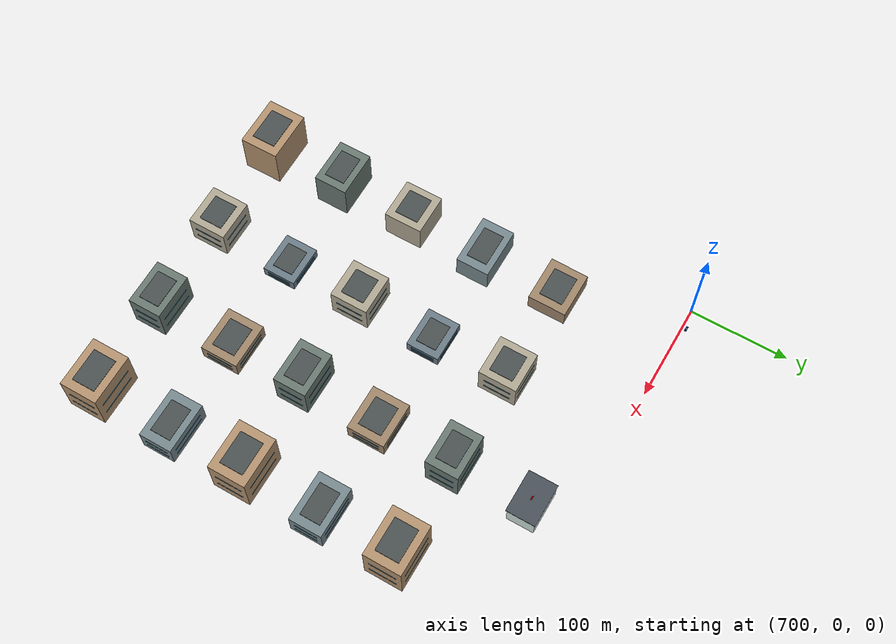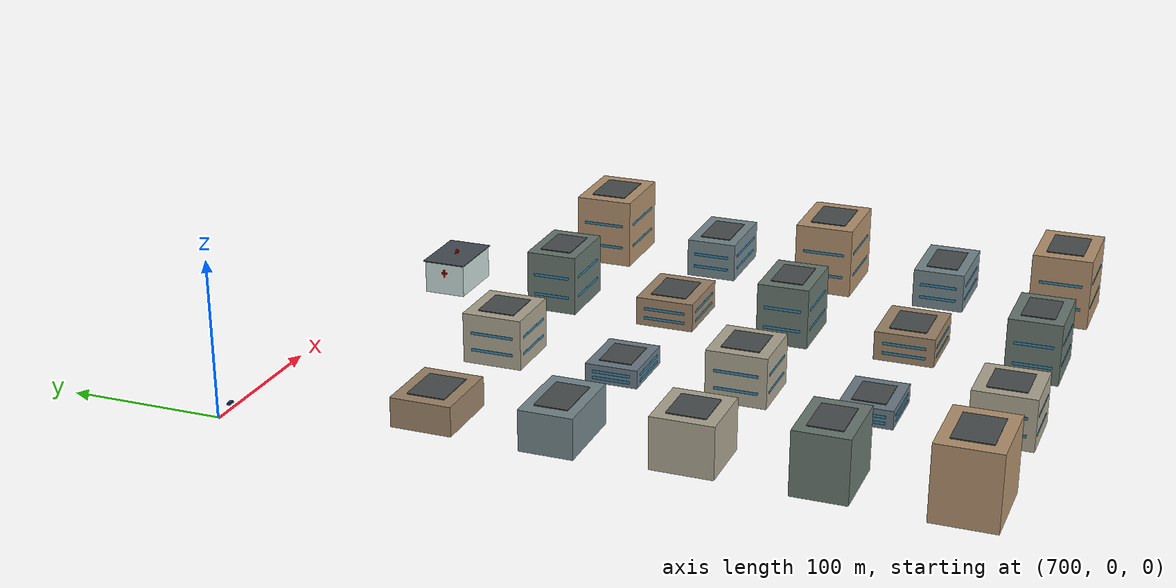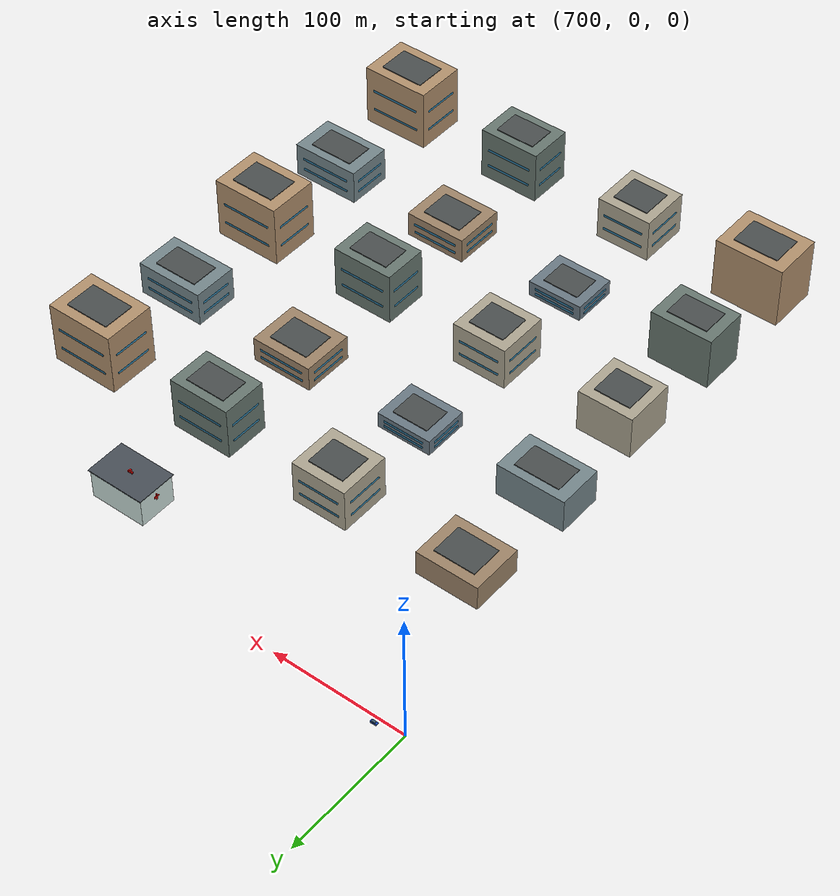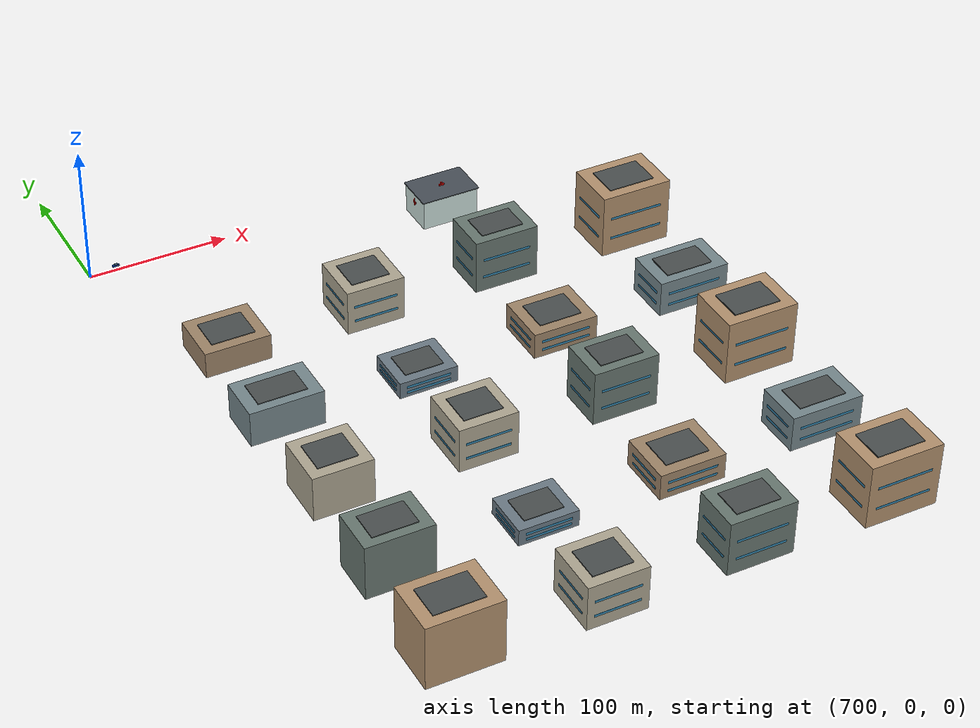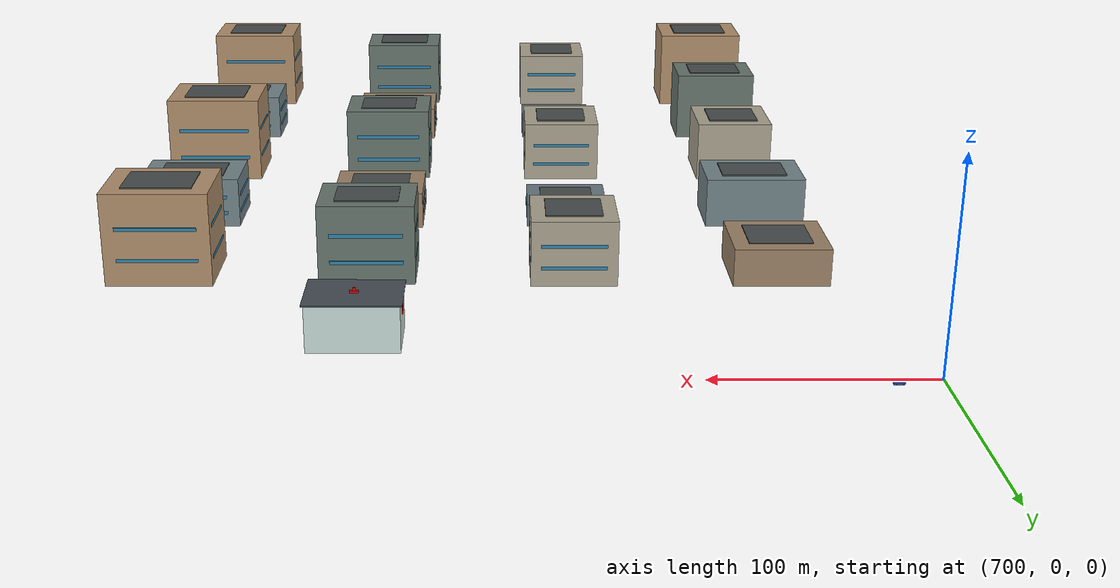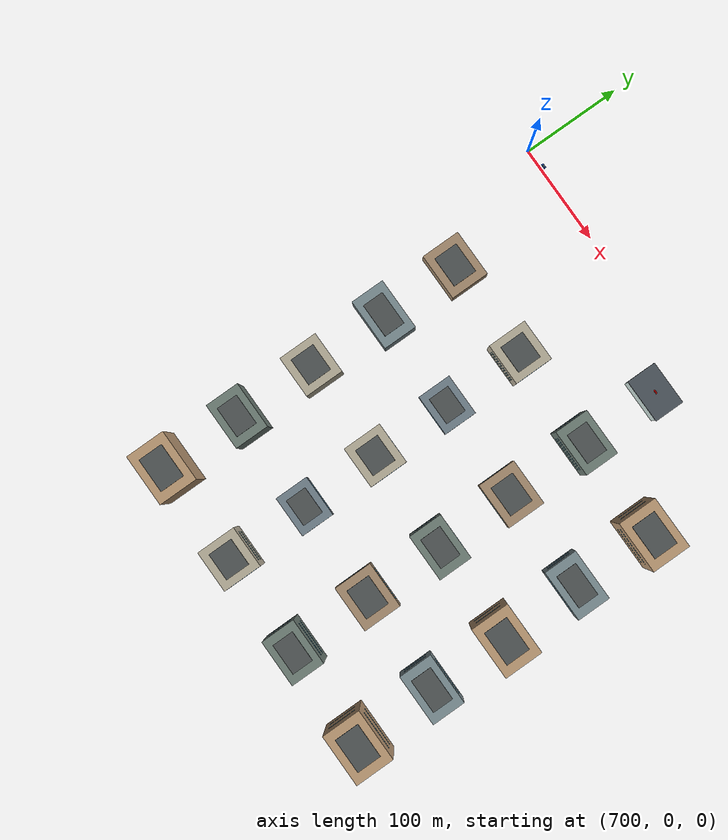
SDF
<sdf version="1.9">
 <world name="smart_city">
  <model name="chennai_block_011">
   <static>true</static>
   <pose>750 -440 0 0 0 0</pose>
   <link name="building">
    <collision name="structure">
     <pose>0 0 23.5 0 0 0</pose>
     <geometry><box><size>52 39 47</size></box></geometry>
    </collision>
    <visual name="facade">
     <pose>0 0 23.5 0 0 0</pose>
     <geometry><box><size>52 39 47</size></box></geometry>
     <material><ambient>0.70 0.57 0.43 1</ambient><diffuse>0.70 0.57 0.43 1</diffuse></material>
    </visual>
    <visual name="roof">
     <pose>0 0 47.3 0 0 0</pose>
     <geometry><box><size>34.3 24.2 0.6</size></box></geometry>
     <material><ambient>0.29 0.31 0.31 1</ambient><diffuse>0.29 0.31 0.31 1</diffuse></material>
    </visual>
   </link>
  </model>
  <model name="chennai_block_022">
   <static>true</static>
   <pose>750 -360 0 0 0 0</pose>
   <link name="building">
    <collision name="structure">
     <pose>0 0 20.0 0 0 0</pose>
     <geometry><box><size>47 34 40</size></box></geometry>
    </collision>
    <visual name="facade">
     <pose>0 0 20.0 0 0 0</pose>
     <geometry><box><size>47 34 40</size></box></geometry>
     <material><ambient>0.41 0.47 0.44 1</ambient><diffuse>0.41 0.47 0.44 1</diffuse></material>
    </visual>
    <visual name="roof">
     <pose>0 0 40.3 0 0 0</pose>
     <geometry><box><size>31.0 21.1 0.6</size></box></geometry>
     <material><ambient>0.29 0.31 0.31 1</ambient><diffuse>0.29 0.31 0.31 1</diffuse></material>
    </visual>
   </link>
  </model>
  <model name="chennai_block_033">
   <static>true</static>
   <pose>750 -280 0 0 0 0</pose>
   <link name="building">
    <collision name="structure">
     <pose>0 0 16.5 0 0 0</pose>
     <geometry><box><size>42 39 33</size></box></geometry>
    </collision>
    <visual name="facade">
     <pose>0 0 16.5 0 0 0</pose>
     <geometry><box><size>42 39 33</size></box></geometry>
     <material><ambient>0.68 0.65 0.57 1</ambient><diffuse>0.68 0.65 0.57 1</diffuse></material>
    </visual>
    <visual name="roof">
     <pose>0 0 33.3 0 0 0</pose>
     <geometry><box><size>27.7 24.2 0.6</size></box></geometry>
     <material><ambient>0.29 0.31 0.31 1</ambient><diffuse>0.29 0.31 0.31 1</diffuse></material>
    </visual>
   </link>
  </model>
  <model name="chennai_block_044">
   <static>true</static>
   <pose>750 -200 0 0 0 0</pose>
   <link name="building">
    <collision name="structure">
     <pose>0 0 13.0 0 0 0</pose>
     <geometry><box><size>52 34 26</size></box></geometry>
    </collision>
    <visual name="facade">
     <pose>0 0 13.0 0 0 0</pose>
     <geometry><box><size>52 34 26</size></box></geometry>
     <material><ambient>0.46 0.53 0.55 1</ambient><diffuse>0.46 0.53 0.55 1</diffuse></material>
    </visual>
    <visual name="roof">
     <pose>0 0 26.3 0 0 0</pose>
     <geometry><box><size>34.3 21.1 0.6</size></box></geometry>
     <material><ambient>0.29 0.31 0.31 1</ambient><diffuse>0.29 0.31 0.31 1</diffuse></material>
    </visual>
   </link>
  </model>
  <model name="chennai_block_055">
   <static>true</static>
   <pose>750 -120 0 0 0 0</pose>
   <link name="building">
    <collision name="structure">
     <pose>0 0 9.5 0 0 0</pose>
     <geometry><box><size>47 39 19</size></box></geometry>
    </collision>
    <visual name="facade">
     <pose>0 0 9.5 0 0 0</pose>
     <geometry><box><size>47 39 19</size></box></geometry>
     <material><ambient>0.62 0.52 0.41 1</ambient><diffuse>0.62 0.52 0.41 1</diffuse></material>
    </visual>
    <visual name="roof">
     <pose>0 0 19.3 0 0 0</pose>
     <geometry><box><size>31.0 24.2 0.6</size></box></geometry>
     <material><ambient>0.29 0.31 0.31 1</ambient><diffuse>0.29 0.31 0.31 1</diffuse></material>
    </visual>
   </link>
  </model>
  <model name="chennai_block_111">
   <static>true</static>
   <pose>850 -440 0 0 0 0</pose>
   <link name="building">
    <collision name="structure">
     <pose>0 0 16.5 0 0 0</pose>
     <geometry><box><size>42 39 33</size></box></geometry>
    </collision>
    <visual name="facade">
     <pose>0 0 16.5 0 0 0</pose>
     <geometry><box><size>42 39 33</size></box></geometry>
     <material><ambient>0.68 0.65 0.57 1</ambient><diffuse>0.68 0.65 0.57 1</diffuse></material>
    </visual>
    <visual name="window_band_y_9_-1">
     <pose>0 -19.54 9.24 0 0 0</pose>
     <geometry><box><size>31.9 0.06 1.8</size></box></geometry>
     <material><ambient>0.20 0.52 0.68 1</ambient><diffuse>0.20 0.52 0.68 1</diffuse></material>
    </visual>
    <visual name="window_band_x_9_-1">
     <pose>-21.04 0 9.24 0 0 0</pose>
     <geometry><box><size>0.06 28.1 1.8</size></box></geometry>
     <material><ambient>0.20 0.52 0.68 1</ambient><diffuse>0.20 0.52 0.68 1</diffuse></material>
    </visual>
    <visual name="window_band_y_9_1">
     <pose>0 19.54 9.24 0 0 0</pose>
     <geometry><box><size>31.9 0.06 1.8</size></box></geometry>
     <material><ambient>0.20 0.52 0.68 1</ambient><diffuse>0.20 0.52 0.68 1</diffuse></material>
    </visual>
    <visual name="window_band_x_9_1">
     <pose>21.04 0 9.24 0 0 0</pose>
     <geometry><box><size>0.06 28.1 1.8</size></box></geometry>
     <material><ambient>0.20 0.52 0.68 1</ambient><diffuse>0.20 0.52 0.68 1</diffuse></material>
    </visual>
    <visual name="window_band_y_20_-1">
     <pose>0 -19.54 20.46 0 0 0</pose>
     <geometry><box><size>31.9 0.06 1.8</size></box></geometry>
     <material><ambient>0.20 0.52 0.68 1</ambient><diffuse>0.20 0.52 0.68 1</diffuse></material>
    </visual>
    <visual name="window_band_x_20_-1">
     <pose>-21.04 0 20.46 0 0 0</pose>
     <geometry><box><size>0.06 28.1 1.8</size></box></geometry>
     <material><ambient>0.20 0.52 0.68 1</ambient><diffuse>0.20 0.52 0.68 1</diffuse></material>
    </visual>
    <visual name="window_band_y_20_1">
     <pose>0 19.54 20.46 0 0 0</pose>
     <geometry><box><size>31.9 0.06 1.8</size></box></geometry>
     <material><ambient>0.20 0.52 0.68 1</ambient><diffuse>0.20 0.52 0.68 1</diffuse></material>
    </visual>
    <visual name="window_band_x_20_1">
     <pose>21.04 0 20.46 0 0 0</pose>
     <geometry><box><size>0.06 28.1 1.8</size></box></geometry>
     <material><ambient>0.20 0.52 0.68 1</ambient><diffuse>0.20 0.52 0.68 1</diffuse></material>
    </visual>
    <visual name="roof">
     <pose>0 0 33.3 0 0 0</pose>
     <geometry><box><size>27.7 24.2 0.6</size></box></geometry>
     <material><ambient>0.29 0.31 0.31 1</ambient><diffuse>0.29 0.31 0.31 1</diffuse></material>
    </visual>
   </link>
  </model>
  <model name="chennai_block_112">
   <static>true</static>
   <pose>950 -440 0 0 0 0</pose>
   <link name="building">
    <collision name="structure">
     <pose>0 0 20.0 0 0 0</pose>
     <geometry><box><size>47 34 40</size></box></geometry>
    </collision>
    <visual name="facade">
     <pose>0 0 20.0 0 0 0</pose>
     <geometry><box><size>47 34 40</size></box></geometry>
     <material><ambient>0.41 0.47 0.44 1</ambient><diffuse>0.41 0.47 0.44 1</diffuse></material>
    </visual>
    <visual name="window_band_y_11_-1">
     <pose>0 -17.04 11.20 0 0 0</pose>
     <geometry><box><size>35.7 0.06 1.8</size></box></geometry>
     <material><ambient>0.20 0.52 0.68 1</ambient><diffuse>0.20 0.52 0.68 1</diffuse></material>
    </visual>
    <visual name="window_band_x_11_-1">
     <pose>-23.54 0 11.20 0 0 0</pose>
     <geometry><box><size>0.06 24.5 1.8</size></box></geometry>
     <material><ambient>0.20 0.52 0.68 1</ambient><diffuse>0.20 0.52 0.68 1</diffuse></material>
    </visual>
    <visual name="window_band_y_11_1">
     <pose>0 17.04 11.20 0 0 0</pose>
     <geometry><box><size>35.7 0.06 1.8</size></box></geometry>
     <material><ambient>0.20 0.52 0.68 1</ambient><diffuse>0.20 0.52 0.68 1</diffuse></material>
    </visual>
    <visual name="window_band_x_11_1">
     <pose>23.54 0 11.20 0 0 0</pose>
     <geometry><box><size>0.06 24.5 1.8</size></box></geometry>
     <material><ambient>0.20 0.52 0.68 1</ambient><diffuse>0.20 0.52 0.68 1</diffuse></material>
    </visual>
    <visual name="window_band_y_24_-1">
     <pose>0 -17.04 24.80 0 0 0</pose>
     <geometry><box><size>35.7 0.06 1.8</size></box></geometry>
     <material><ambient>0.20 0.52 0.68 1</ambient><diffuse>0.20 0.52 0.68 1</diffuse></material>
    </visual>
    <visual name="window_band_x_24_-1">
     <pose>-23.54 0 24.80 0 0 0</pose>
     <geometry><box><size>0.06 24.5 1.8</size></box></geometry>
     <material><ambient>0.20 0.52 0.68 1</ambient><diffuse>0.20 0.52 0.68 1</diffuse></material>
    </visual>
    <visual name="window_band_y_24_1">
     <pose>0 17.04 24.80 0 0 0</pose>
     <geometry><box><size>35.7 0.06 1.8</size></box></geometry>
     <material><ambient>0.20 0.52 0.68 1</ambient><diffuse>0.20 0.52 0.68 1</diffuse></material>
    </visual>
    <visual name="window_band_x_24_1">
     <pose>23.54 0 24.80 0 0 0</pose>
     <geometry><box><size>0.06 24.5 1.8</size></box></geometry>
     <material><ambient>0.20 0.52 0.68 1</ambient><diffuse>0.20 0.52 0.68 1</diffuse></material>
    </visual>
    <visual name="roof">
     <pose>0 0 40.3 0 0 0</pose>
     <geometry><box><size>31.0 21.1 0.6</size></box></geometry>
     <material><ambient>0.29 0.31 0.31 1</ambient><diffuse>0.29 0.31 0.31 1</diffuse></material>
    </visual>
   </link>
  </model>
  <model name="chennai_block_113">
   <static>true</static>
   <pose>1050 -440 0 0 0 0</pose>
   <link name="building">
    <collision name="structure">
     <pose>0 0 23.5 0 0 0</pose>
     <geometry><box><size>52 39 47</size></box></geometry>
    </collision>
    <visual name="facade">
     <pose>0 0 23.5 0 0 0</pose>
     <geometry><box><size>52 39 47</size></box></geometry>
     <material><ambient>0.70 0.57 0.43 1</ambient><diffuse>0.70 0.57 0.43 1</diffuse></material>
    </visual>
    <visual name="window_band_y_13_-1">
     <pose>0 -19.54 13.16 0 0 0</pose>
     <geometry><box><size>39.5 0.06 1.8</size></box></geometry>
     <material><ambient>0.20 0.52 0.68 1</ambient><diffuse>0.20 0.52 0.68 1</diffuse></material>
    </visual>
    <visual name="window_band_x_13_-1">
     <pose>-26.04 0 13.16 0 0 0</pose>
     <geometry><box><size>0.06 28.1 1.8</size></box></geometry>
     <material><ambient>0.20 0.52 0.68 1</ambient><diffuse>0.20 0.52 0.68 1</diffuse></material>
    </visual>
    <visual name="window_band_y_13_1">
     <pose>0 19.54 13.16 0 0 0</pose>
     <geometry><box><size>39.5 0.06 1.8</size></box></geometry>
     <material><ambient>0.20 0.52 0.68 1</ambient><diffuse>0.20 0.52 0.68 1</diffuse></material>
    </visual>
    <visual name="window_band_x_13_1">
     <pose>26.04 0 13.16 0 0 0</pose>
     <geometry><box><size>0.06 28.1 1.8</size></box></geometry>
     <material><ambient>0.20 0.52 0.68 1</ambient><diffuse>0.20 0.52 0.68 1</diffuse></material>
    </visual>
    <visual name="window_band_y_29_-1">
     <pose>0 -19.54 29.14 0 0 0</pose>
     <geometry><box><size>39.5 0.06 1.8</size></box></geometry>
     <material><ambient>0.20 0.52 0.68 1</ambient><diffuse>0.20 0.52 0.68 1</diffuse></material>
    </visual>
    <visual name="window_band_x_29_-1">
     <pose>-26.04 0 29.14 0 0 0</pose>
     <geometry><box><size>0.06 28.1 1.8</size></box></geometry>
     <material><ambient>0.20 0.52 0.68 1</ambient><diffuse>0.20 0.52 0.68 1</diffuse></material>
    </visual>
    <visual name="window_band_y_29_1">
     <pose>0 19.54 29.14 0 0 0</pose>
     <geometry><box><size>39.5 0.06 1.8</size></box></geometry>
     <material><ambient>0.20 0.52 0.68 1</ambient><diffuse>0.20 0.52 0.68 1</diffuse></material>
    </visual>
    <visual name="window_band_x_29_1">
     <pose>26.04 0 29.14 0 0 0</pose>
     <geometry><box><size>0.06 28.1 1.8</size></box></geometry>
     <material><ambient>0.20 0.52 0.68 1</ambient><diffuse>0.20 0.52 0.68 1</diffuse></material>
    </visual>
    <visual name="roof">
     <pose>0 0 47.3 0 0 0</pose>
     <geometry><box><size>34.3 24.2 0.6</size></box></geometry>
     <material><ambient>0.29 0.31 0.31 1</ambient><diffuse>0.29 0.31 0.31 1</diffuse></material>
    </visual>
   </link>
  </model>
  <model name="chennai_block_114">
   <static>true</static>
   <pose>850 -360 0 0 0 0</pose>
   <link name="building">
    <collision name="structure">
     <pose>0 0 6.0 0 0 0</pose>
     <geometry><box><size>42 34 12</size></box></geometry>
    </collision>
    <visual name="facade">
     <pose>0 0 6.0 0 0 0</pose>
     <geometry><box><size>42 34 12</size></box></geometry>
     <material><ambient>0.42 0.48 0.52 1</ambient><diffuse>0.42 0.48 0.52 1</diffuse></material>
    </visual>
    <visual name="window_band_y_3_-1">
     <pose>0 -17.04 3.36 0 0 0</pose>
     <geometry><box><size>31.9 0.06 1.8</size></box></geometry>
     <material><ambient>0.20 0.52 0.68 1</ambient><diffuse>0.20 0.52 0.68 1</diffuse></material>
    </visual>
    <visual name="window_band_x_3_-1">
     <pose>-21.04 0 3.36 0 0 0</pose>
     <geometry><box><size>0.06 24.5 1.8</size></box></geometry>
     <material><ambient>0.20 0.52 0.68 1</ambient><diffuse>0.20 0.52 0.68 1</diffuse></material>
    </visual>
    <visual name="window_band_y_3_1">
     <pose>0 17.04 3.36 0 0 0</pose>
     <geometry><box><size>31.9 0.06 1.8</size></box></geometry>
     <material><ambient>0.20 0.52 0.68 1</ambient><diffuse>0.20 0.52 0.68 1</diffuse></material>
    </visual>
    <visual name="window_band_x_3_1">
     <pose>21.04 0 3.36 0 0 0</pose>
     <geometry><box><size>0.06 24.5 1.8</size></box></geometry>
     <material><ambient>0.20 0.52 0.68 1</ambient><diffuse>0.20 0.52 0.68 1</diffuse></material>
    </visual>
    <visual name="window_band_y_7_-1">
     <pose>0 -17.04 7.44 0 0 0</pose>
     <geometry><box><size>31.9 0.06 1.8</size></box></geometry>
     <material><ambient>0.20 0.52 0.68 1</ambient><diffuse>0.20 0.52 0.68 1</diffuse></material>
    </visual>
    <visual name="window_band_x_7_-1">
     <pose>-21.04 0 7.44 0 0 0</pose>
     <geometry><box><size>0.06 24.5 1.8</size></box></geometry>
     <material><ambient>0.20 0.52 0.68 1</ambient><diffuse>0.20 0.52 0.68 1</diffuse></material>
    </visual>
    <visual name="window_band_y_7_1">
     <pose>0 17.04 7.44 0 0 0</pose>
     <geometry><box><size>31.9 0.06 1.8</size></box></geometry>
     <material><ambient>0.20 0.52 0.68 1</ambient><diffuse>0.20 0.52 0.68 1</diffuse></material>
    </visual>
    <visual name="window_band_x_7_1">
     <pose>21.04 0 7.44 0 0 0</pose>
     <geometry><box><size>0.06 24.5 1.8</size></box></geometry>
     <material><ambient>0.20 0.52 0.68 1</ambient><diffuse>0.20 0.52 0.68 1</diffuse></material>
    </visual>
    <visual name="roof">
     <pose>0 0 12.3 0 0 0</pose>
     <geometry><box><size>27.7 21.1 0.6</size></box></geometry>
     <material><ambient>0.29 0.31 0.31 1</ambient><diffuse>0.29 0.31 0.31 1</diffuse></material>
    </visual>
   </link>
  </model>
  <model name="chennai_block_115">
   <static>true</static>
   <pose>950 -360 0 0 0 0</pose>
   <link name="building">
    <collision name="structure">
     <pose>0 0 9.5 0 0 0</pose>
     <geometry><box><size>47 39 19</size></box></geometry>
    </collision>
    <visual name="facade">
     <pose>0 0 9.5 0 0 0</pose>
     <geometry><box><size>47 39 19</size></box></geometry>
     <material><ambient>0.62 0.52 0.41 1</ambient><diffuse>0.62 0.52 0.41 1</diffuse></material>
    </visual>
    <visual name="window_band_y_5_-1">
     <pose>0 -19.54 5.32 0 0 0</pose>
     <geometry><box><size>35.7 0.06 1.8</size></box></geometry>
     <material><ambient>0.20 0.52 0.68 1</ambient><diffuse>0.20 0.52 0.68 1</diffuse></material>
    </visual>
    <visual name="window_band_x_5_-1">
     <pose>-23.54 0 5.32 0 0 0</pose>
     <geometry><box><size>0.06 28.1 1.8</size></box></geometry>
     <material><ambient>0.20 0.52 0.68 1</ambient><diffuse>0.20 0.52 0.68 1</diffuse></material>
    </visual>
    <visual name="window_band_y_5_1">
     <pose>0 19.54 5.32 0 0 0</pose>
     <geometry><box><size>35.7 0.06 1.8</size></box></geometry>
     <material><ambient>0.20 0.52 0.68 1</ambient><diffuse>0.20 0.52 0.68 1</diffuse></material>
    </visual>
    <visual name="window_band_x_5_1">
     <pose>23.54 0 5.32 0 0 0</pose>
     <geometry><box><size>0.06 28.1 1.8</size></box></geometry>
     <material><ambient>0.20 0.52 0.68 1</ambient><diffuse>0.20 0.52 0.68 1</diffuse></material>
    </visual>
    <visual name="window_band_y_11_-1">
     <pose>0 -19.54 11.78 0 0 0</pose>
     <geometry><box><size>35.7 0.06 1.8</size></box></geometry>
     <material><ambient>0.20 0.52 0.68 1</ambient><diffuse>0.20 0.52 0.68 1</diffuse></material>
    </visual>
    <visual name="window_band_x_11_-1">
     <pose>-23.54 0 11.78 0 0 0</pose>
     <geometry><box><size>0.06 28.1 1.8</size></box></geometry>
     <material><ambient>0.20 0.52 0.68 1</ambient><diffuse>0.20 0.52 0.68 1</diffuse></material>
    </visual>
    <visual name="window_band_y_11_1">
     <pose>0 19.54 11.78 0 0 0</pose>
     <geometry><box><size>35.7 0.06 1.8</size></box></geometry>
     <material><ambient>0.20 0.52 0.68 1</ambient><diffuse>0.20 0.52 0.68 1</diffuse></material>
    </visual>
    <visual name="window_band_x_11_1">
     <pose>23.54 0 11.78 0 0 0</pose>
     <geometry><box><size>0.06 28.1 1.8</size></box></geometry>
     <material><ambient>0.20 0.52 0.68 1</ambient><diffuse>0.20 0.52 0.68 1</diffuse></material>
    </visual>
    <visual name="roof">
     <pose>0 0 19.3 0 0 0</pose>
     <geometry><box><size>31.0 24.2 0.6</size></box></geometry>
     <material><ambient>0.29 0.31 0.31 1</ambient><diffuse>0.29 0.31 0.31 1</diffuse></material>
    </visual>
   </link>
  </model>
  <model name="chennai_block_116">
   <static>true</static>
   <pose>1050 -360 0 0 0 0</pose>
   <link name="building">
    <collision name="structure">
     <pose>0 0 13.0 0 0 0</pose>
     <geometry><box><size>52 34 26</size></box></geometry>
    </collision>
    <visual name="facade">
     <pose>0 0 13.0 0 0 0</pose>
     <geometry><box><size>52 34 26</size></box></geometry>
     <material><ambient>0.46 0.53 0.55 1</ambient><diffuse>0.46 0.53 0.55 1</diffuse></material>
    </visual>
    <visual name="window_band_y_7_-1">
     <pose>0 -17.04 7.28 0 0 0</pose>
     <geometry><box><size>39.5 0.06 1.8</size></box></geometry>
     <material><ambient>0.20 0.52 0.68 1</ambient><diffuse>0.20 0.52 0.68 1</diffuse></material>
    </visual>
    <visual name="window_band_x_7_-1">
     <pose>-26.04 0 7.28 0 0 0</pose>
     <geometry><box><size>0.06 24.5 1.8</size></box></geometry>
     <material><ambient>0.20 0.52 0.68 1</ambient><diffuse>0.20 0.52 0.68 1</diffuse></material>
    </visual>
    <visual name="window_band_y_7_1">
     <pose>0 17.04 7.28 0 0 0</pose>
     <geometry><box><size>39.5 0.06 1.8</size></box></geometry>
     <material><ambient>0.20 0.52 0.68 1</ambient><diffuse>0.20 0.52 0.68 1</diffuse></material>
    </visual>
    <visual name="window_band_x_7_1">
     <pose>26.04 0 7.28 0 0 0</pose>
     <geometry><box><size>0.06 24.5 1.8</size></box></geometry>
     <material><ambient>0.20 0.52 0.68 1</ambient><diffuse>0.20 0.52 0.68 1</diffuse></material>
    </visual>
    <visual name="window_band_y_16_-1">
     <pose>0 -17.04 16.12 0 0 0</pose>
     <geometry><box><size>39.5 0.06 1.8</size></box></geometry>
     <material><ambient>0.20 0.52 0.68 1</ambient><diffuse>0.20 0.52 0.68 1</diffuse></material>
    </visual>
    <visual name="window_band_x_16_-1">
     <pose>-26.04 0 16.12 0 0 0</pose>
     <geometry><box><size>0.06 24.5 1.8</size></box></geometry>
     <material><ambient>0.20 0.52 0.68 1</ambient><diffuse>0.20 0.52 0.68 1</diffuse></material>
    </visual>
    <visual name="window_band_y_16_1">
     <pose>0 17.04 16.12 0 0 0</pose>
     <geometry><box><size>39.5 0.06 1.8</size></box></geometry>
     <material><ambient>0.20 0.52 0.68 1</ambient><diffuse>0.20 0.52 0.68 1</diffuse></material>
    </visual>
    <visual name="window_band_x_16_1">
     <pose>26.04 0 16.12 0 0 0</pose>
     <geometry><box><size>0.06 24.5 1.8</size></box></geometry>
     <material><ambient>0.20 0.52 0.68 1</ambient><diffuse>0.20 0.52 0.68 1</diffuse></material>
    </visual>
    <visual name="roof">
     <pose>0 0 26.3 0 0 0</pose>
     <geometry><box><size>34.3 21.1 0.6</size></box></geometry>
     <material><ambient>0.29 0.31 0.31 1</ambient><diffuse>0.29 0.31 0.31 1</diffuse></material>
    </visual>
   </link>
  </model>
  <model name="chennai_block_117">
   <static>true</static>
   <pose>850 -280 0 0 0 0</pose>
   <link name="building">
    <collision name="structure">
     <pose>0 0 16.5 0 0 0</pose>
     <geometry><box><size>42 39 33</size></box></geometry>
    </collision>
    <visual name="facade">
     <pose>0 0 16.5 0 0 0</pose>
     <geometry><box><size>42 39 33</size></box></geometry>
     <material><ambient>0.68 0.65 0.57 1</ambient><diffuse>0.68 0.65 0.57 1</diffuse></material>
    </visual>
    <visual name="window_band_y_9_-1">
     <pose>0 -19.54 9.24 0 0 0</pose>
     <geometry><box><size>31.9 0.06 1.8</size></box></geometry>
     <material><ambient>0.20 0.52 0.68 1</ambient><diffuse>0.20 0.52 0.68 1</diffuse></material>
    </visual>
    <visual name="window_band_x_9_-1">
     <pose>-21.04 0 9.24 0 0 0</pose>
     <geometry><box><size>0.06 28.1 1.8</size></box></geometry>
     <material><ambient>0.20 0.52 0.68 1</ambient><diffuse>0.20 0.52 0.68 1</diffuse></material>
    </visual>
    <visual name="window_band_y_9_1">
     <pose>0 19.54 9.24 0 0 0</pose>
     <geometry><box><size>31.9 0.06 1.8</size></box></geometry>
     <material><ambient>0.20 0.52 0.68 1</ambient><diffuse>0.20 0.52 0.68 1</diffuse></material>
    </visual>
    <visual name="window_band_x_9_1">
     <pose>21.04 0 9.24 0 0 0</pose>
     <geometry><box><size>0.06 28.1 1.8</size></box></geometry>
     <material><ambient>0.20 0.52 0.68 1</ambient><diffuse>0.20 0.52 0.68 1</diffuse></material>
    </visual>
    <visual name="window_band_y_20_-1">
     <pose>0 -19.54 20.46 0 0 0</pose>
     <geometry><box><size>31.9 0.06 1.8</size></box></geometry>
     <material><ambient>0.20 0.52 0.68 1</ambient><diffuse>0.20 0.52 0.68 1</diffuse></material>
    </visual>
    <visual name="window_band_x_20_-1">
     <pose>-21.04 0 20.46 0 0 0</pose>
     <geometry><box><size>0.06 28.1 1.8</size></box></geometry>
     <material><ambient>0.20 0.52 0.68 1</ambient><diffuse>0.20 0.52 0.68 1</diffuse></material>
    </visual>
    <visual name="window_band_y_20_1">
     <pose>0 19.54 20.46 0 0 0</pose>
     <geometry><box><size>31.9 0.06 1.8</size></box></geometry>
     <material><ambient>0.20 0.52 0.68 1</ambient><diffuse>0.20 0.52 0.68 1</diffuse></material>
    </visual>
    <visual name="window_band_x_20_1">
     <pose>21.04 0 20.46 0 0 0</pose>
     <geometry><box><size>0.06 28.1 1.8</size></box></geometry>
     <material><ambient>0.20 0.52 0.68 1</ambient><diffuse>0.20 0.52 0.68 1</diffuse></material>
    </visual>
    <visual name="roof">
     <pose>0 0 33.3 0 0 0</pose>
     <geometry><box><size>27.7 24.2 0.6</size></box></geometry>
     <material><ambient>0.29 0.31 0.31 1</ambient><diffuse>0.29 0.31 0.31 1</diffuse></material>
    </visual>
   </link>
  </model>
  <model name="chennai_block_118">
   <static>true</static>
   <pose>950 -280 0 0 0 0</pose>
   <link name="building">
    <collision name="structure">
     <pose>0 0 20.0 0 0 0</pose>
     <geometry><box><size>47 34 40</size></box></geometry>
    </collision>
    <visual name="facade">
     <pose>0 0 20.0 0 0 0</pose>
     <geometry><box><size>47 34 40</size></box></geometry>
     <material><ambient>0.41 0.47 0.44 1</ambient><diffuse>0.41 0.47 0.44 1</diffuse></material>
    </visual>
    <visual name="window_band_y_11_-1">
     <pose>0 -17.04 11.20 0 0 0</pose>
     <geometry><box><size>35.7 0.06 1.8</size></box></geometry>
     <material><ambient>0.20 0.52 0.68 1</ambient><diffuse>0.20 0.52 0.68 1</diffuse></material>
    </visual>
    <visual name="window_band_x_11_-1">
     <pose>-23.54 0 11.20 0 0 0</pose>
     <geometry><box><size>0.06 24.5 1.8</size></box></geometry>
     <material><ambient>0.20 0.52 0.68 1</ambient><diffuse>0.20 0.52 0.68 1</diffuse></material>
    </visual>
    <visual name="window_band_y_11_1">
     <pose>0 17.04 11.20 0 0 0</pose>
     <geometry><box><size>35.7 0.06 1.8</size></box></geometry>
     <material><ambient>0.20 0.52 0.68 1</ambient><diffuse>0.20 0.52 0.68 1</diffuse></material>
    </visual>
    <visual name="window_band_x_11_1">
     <pose>23.54 0 11.20 0 0 0</pose>
     <geometry><box><size>0.06 24.5 1.8</size></box></geometry>
     <material><ambient>0.20 0.52 0.68 1</ambient><diffuse>0.20 0.52 0.68 1</diffuse></material>
    </visual>
    <visual name="window_band_y_24_-1">
     <pose>0 -17.04 24.80 0 0 0</pose>
     <geometry><box><size>35.7 0.06 1.8</size></box></geometry>
     <material><ambient>0.20 0.52 0.68 1</ambient><diffuse>0.20 0.52 0.68 1</diffuse></material>
    </visual>
    <visual name="window_band_x_24_-1">
     <pose>-23.54 0 24.80 0 0 0</pose>
     <geometry><box><size>0.06 24.5 1.8</size></box></geometry>
     <material><ambient>0.20 0.52 0.68 1</ambient><diffuse>0.20 0.52 0.68 1</diffuse></material>
    </visual>
    <visual name="window_band_y_24_1">
     <pose>0 17.04 24.80 0 0 0</pose>
     <geometry><box><size>35.7 0.06 1.8</size></box></geometry>
     <material><ambient>0.20 0.52 0.68 1</ambient><diffuse>0.20 0.52 0.68 1</diffuse></material>
    </visual>
    <visual name="window_band_x_24_1">
     <pose>23.54 0 24.80 0 0 0</pose>
     <geometry><box><size>0.06 24.5 1.8</size></box></geometry>
     <material><ambient>0.20 0.52 0.68 1</ambient><diffuse>0.20 0.52 0.68 1</diffuse></material>
    </visual>
    <visual name="roof">
     <pose>0 0 40.3 0 0 0</pose>
     <geometry><box><size>31.0 21.1 0.6</size></box></geometry>
     <material><ambient>0.29 0.31 0.31 1</ambient><diffuse>0.29 0.31 0.31 1</diffuse></material>
    </visual>
   </link>
  </model>
  <model name="chennai_block_119">
   <static>true</static>
   <pose>1050 -280 0 0 0 0</pose>
   <link name="building">
    <collision name="structure">
     <pose>0 0 23.5 0 0 0</pose>
     <geometry><box><size>52 39 47</size></box></geometry>
    </collision>
    <visual name="facade">
     <pose>0 0 23.5 0 0 0</pose>
     <geometry><box><size>52 39 47</size></box></geometry>
     <material><ambient>0.70 0.57 0.43 1</ambient><diffuse>0.70 0.57 0.43 1</diffuse></material>
    </visual>
    <visual name="window_band_y_13_-1">
     <pose>0 -19.54 13.16 0 0 0</pose>
     <geometry><box><size>39.5 0.06 1.8</size></box></geometry>
     <material><ambient>0.20 0.52 0.68 1</ambient><diffuse>0.20 0.52 0.68 1</diffuse></material>
    </visual>
    <visual name="window_band_x_13_-1">
     <pose>-26.04 0 13.16 0 0 0</pose>
     <geometry><box><size>0.06 28.1 1.8</size></box></geometry>
     <material><ambient>0.20 0.52 0.68 1</ambient><diffuse>0.20 0.52 0.68 1</diffuse></material>
    </visual>
    <visual name="window_band_y_13_1">
     <pose>0 19.54 13.16 0 0 0</pose>
     <geometry><box><size>39.5 0.06 1.8</size></box></geometry>
     <material><ambient>0.20 0.52 0.68 1</ambient><diffuse>0.20 0.52 0.68 1</diffuse></material>
    </visual>
    <visual name="window_band_x_13_1">
     <pose>26.04 0 13.16 0 0 0</pose>
     <geometry><box><size>0.06 28.1 1.8</size></box></geometry>
     <material><ambient>0.20 0.52 0.68 1</ambient><diffuse>0.20 0.52 0.68 1</diffuse></material>
    </visual>
    <visual name="window_band_y_29_-1">
     <pose>0 -19.54 29.14 0 0 0</pose>
     <geometry><box><size>39.5 0.06 1.8</size></box></geometry>
     <material><ambient>0.20 0.52 0.68 1</ambient><diffuse>0.20 0.52 0.68 1</diffuse></material>
    </visual>
    <visual name="window_band_x_29_-1">
     <pose>-26.04 0 29.14 0 0 0</pose>
     <geometry><box><size>0.06 28.1 1.8</size></box></geometry>
     <material><ambient>0.20 0.52 0.68 1</ambient><diffuse>0.20 0.52 0.68 1</diffuse></material>
    </visual>
    <visual name="window_band_y_29_1">
     <pose>0 19.54 29.14 0 0 0</pose>
     <geometry><box><size>39.5 0.06 1.8</size></box></geometry>
     <material><ambient>0.20 0.52 0.68 1</ambient><diffuse>0.20 0.52 0.68 1</diffuse></material>
    </visual>
    <visual name="window_band_x_29_1">
     <pose>26.04 0 29.14 0 0 0</pose>
     <geometry><box><size>0.06 28.1 1.8</size></box></geometry>
     <material><ambient>0.20 0.52 0.68 1</ambient><diffuse>0.20 0.52 0.68 1</diffuse></material>
    </visual>
    <visual name="roof">
     <pose>0 0 47.3 0 0 0</pose>
     <geometry><box><size>34.3 24.2 0.6</size></box></geometry>
     <material><ambient>0.29 0.31 0.31 1</ambient><diffuse>0.29 0.31 0.31 1</diffuse></material>
    </visual>
   </link>
  </model>
  <model name="chennai_block_120">
   <static>true</static>
   <pose>850 -200 0 0 0 0</pose>
   <link name="building">
    <collision name="structure">
     <pose>0 0 6.0 0 0 0</pose>
     <geometry><box><size>42 34 12</size></box></geometry>
    </collision>
    <visual name="facade">
     <pose>0 0 6.0 0 0 0</pose>
     <geometry><box><size>42 34 12</size></box></geometry>
     <material><ambient>0.42 0.48 0.52 1</ambient><diffuse>0.42 0.48 0.52 1</diffuse></material>
    </visual>
    <visual name="window_band_y_3_-1">
     <pose>0 -17.04 3.36 0 0 0</pose>
     <geometry><box><size>31.9 0.06 1.8</size></box></geometry>
     <material><ambient>0.20 0.52 0.68 1</ambient><diffuse>0.20 0.52 0.68 1</diffuse></material>
    </visual>
    <visual name="window_band_x_3_-1">
     <pose>-21.04 0 3.36 0 0 0</pose>
     <geometry><box><size>0.06 24.5 1.8</size></box></geometry>
     <material><ambient>0.20 0.52 0.68 1</ambient><diffuse>0.20 0.52 0.68 1</diffuse></material>
    </visual>
    <visual name="window_band_y_3_1">
     <pose>0 17.04 3.36 0 0 0</pose>
     <geometry><box><size>31.9 0.06 1.8</size></box></geometry>
     <material><ambient>0.20 0.52 0.68 1</ambient><diffuse>0.20 0.52 0.68 1</diffuse></material>
    </visual>
    <visual name="window_band_x_3_1">
     <pose>21.04 0 3.36 0 0 0</pose>
     <geometry><box><size>0.06 24.5 1.8</size></box></geometry>
     <material><ambient>0.20 0.52 0.68 1</ambient><diffuse>0.20 0.52 0.68 1</diffuse></material>
    </visual>
    <visual name="window_band_y_7_-1">
     <pose>0 -17.04 7.44 0 0 0</pose>
     <geometry><box><size>31.9 0.06 1.8</size></box></geometry>
     <material><ambient>0.20 0.52 0.68 1</ambient><diffuse>0.20 0.52 0.68 1</diffuse></material>
    </visual>
    <visual name="window_band_x_7_-1">
     <pose>-21.04 0 7.44 0 0 0</pose>
     <geometry><box><size>0.06 24.5 1.8</size></box></geometry>
     <material><ambient>0.20 0.52 0.68 1</ambient><diffuse>0.20 0.52 0.68 1</diffuse></material>
    </visual>
    <visual name="window_band_y_7_1">
     <pose>0 17.04 7.44 0 0 0</pose>
     <geometry><box><size>31.9 0.06 1.8</size></box></geometry>
     <material><ambient>0.20 0.52 0.68 1</ambient><diffuse>0.20 0.52 0.68 1</diffuse></material>
    </visual>
    <visual name="window_band_x_7_1">
     <pose>21.04 0 7.44 0 0 0</pose>
     <geometry><box><size>0.06 24.5 1.8</size></box></geometry>
     <material><ambient>0.20 0.52 0.68 1</ambient><diffuse>0.20 0.52 0.68 1</diffuse></material>
    </visual>
    <visual name="roof">
     <pose>0 0 12.3 0 0 0</pose>
     <geometry><box><size>27.7 21.1 0.6</size></box></geometry>
     <material><ambient>0.29 0.31 0.31 1</ambient><diffuse>0.29 0.31 0.31 1</diffuse></material>
    </visual>
   </link>
  </model>
  <model name="chennai_block_121">
   <static>true</static>
   <pose>950 -200 0 0 0 0</pose>
   <link name="building">
    <collision name="structure">
     <pose>0 0 9.5 0 0 0</pose>
     <geometry><box><size>47 39 19</size></box></geometry>
    </collision>
    <visual name="facade">
     <pose>0 0 9.5 0 0 0</pose>
     <geometry><box><size>47 39 19</size></box></geometry>
     <material><ambient>0.62 0.52 0.41 1</ambient><diffuse>0.62 0.52 0.41 1</diffuse></material>
    </visual>
    <visual name="window_band_y_5_-1">
     <pose>0 -19.54 5.32 0 0 0</pose>
     <geometry><box><size>35.7 0.06 1.8</size></box></geometry>
     <material><ambient>0.20 0.52 0.68 1</ambient><diffuse>0.20 0.52 0.68 1</diffuse></material>
    </visual>
    <visual name="window_band_x_5_-1">
     <pose>-23.54 0 5.32 0 0 0</pose>
     <geometry><box><size>0.06 28.1 1.8</size></box></geometry>
     <material><ambient>0.20 0.52 0.68 1</ambient><diffuse>0.20 0.52 0.68 1</diffuse></material>
    </visual>
    <visual name="window_band_y_5_1">
     <pose>0 19.54 5.32 0 0 0</pose>
     <geometry><box><size>35.7 0.06 1.8</size></box></geometry>
     <material><ambient>0.20 0.52 0.68 1</ambient><diffuse>0.20 0.52 0.68 1</diffuse></material>
    </visual>
    <visual name="window_band_x_5_1">
     <pose>23.54 0 5.32 0 0 0</pose>
     <geometry><box><size>0.06 28.1 1.8</size></box></geometry>
     <material><ambient>0.20 0.52 0.68 1</ambient><diffuse>0.20 0.52 0.68 1</diffuse></material>
    </visual>
    <visual name="window_band_y_11_-1">
     <pose>0 -19.54 11.78 0 0 0</pose>
     <geometry><box><size>35.7 0.06 1.8</size></box></geometry>
     <material><ambient>0.20 0.52 0.68 1</ambient><diffuse>0.20 0.52 0.68 1</diffuse></material>
    </visual>
    <visual name="window_band_x_11_-1">
     <pose>-23.54 0 11.78 0 0 0</pose>
     <geometry><box><size>0.06 28.1 1.8</size></box></geometry>
     <material><ambient>0.20 0.52 0.68 1</ambient><diffuse>0.20 0.52 0.68 1</diffuse></material>
    </visual>
    <visual name="window_band_y_11_1">
     <pose>0 19.54 11.78 0 0 0</pose>
     <geometry><box><size>35.7 0.06 1.8</size></box></geometry>
     <material><ambient>0.20 0.52 0.68 1</ambient><diffuse>0.20 0.52 0.68 1</diffuse></material>
    </visual>
    <visual name="window_band_x_11_1">
     <pose>23.54 0 11.78 0 0 0</pose>
     <geometry><box><size>0.06 28.1 1.8</size></box></geometry>
     <material><ambient>0.20 0.52 0.68 1</ambient><diffuse>0.20 0.52 0.68 1</diffuse></material>
    </visual>
    <visual name="roof">
     <pose>0 0 19.3 0 0 0</pose>
     <geometry><box><size>31.0 24.2 0.6</size></box></geometry>
     <material><ambient>0.29 0.31 0.31 1</ambient><diffuse>0.29 0.31 0.31 1</diffuse></material>
    </visual>
   </link>
  </model>
  <model name="chennai_block_122">
   <static>true</static>
   <pose>1050 -200 0 0 0 0</pose>
   <link name="building">
    <collision name="structure">
     <pose>0 0 13.0 0 0 0</pose>
     <geometry><box><size>52 34 26</size></box></geometry>
    </collision>
    <visual name="facade">
     <pose>0 0 13.0 0 0 0</pose>
     <geometry><box><size>52 34 26</size></box></geometry>
     <material><ambient>0.46 0.53 0.55 1</ambient><diffuse>0.46 0.53 0.55 1</diffuse></material>
    </visual>
    <visual name="window_band_y_7_-1">
     <pose>0 -17.04 7.28 0 0 0</pose>
     <geometry><box><size>39.5 0.06 1.8</size></box></geometry>
     <material><ambient>0.20 0.52 0.68 1</ambient><diffuse>0.20 0.52 0.68 1</diffuse></material>
    </visual>
    <visual name="window_band_x_7_-1">
     <pose>-26.04 0 7.28 0 0 0</pose>
     <geometry><box><size>0.06 24.5 1.8</size></box></geometry>
     <material><ambient>0.20 0.52 0.68 1</ambient><diffuse>0.20 0.52 0.68 1</diffuse></material>
    </visual>
    <visual name="window_band_y_7_1">
     <pose>0 17.04 7.28 0 0 0</pose>
     <geometry><box><size>39.5 0.06 1.8</size></box></geometry>
     <material><ambient>0.20 0.52 0.68 1</ambient><diffuse>0.20 0.52 0.68 1</diffuse></material>
    </visual>
    <visual name="window_band_x_7_1">
     <pose>26.04 0 7.28 0 0 0</pose>
     <geometry><box><size>0.06 24.5 1.8</size></box></geometry>
     <material><ambient>0.20 0.52 0.68 1</ambient><diffuse>0.20 0.52 0.68 1</diffuse></material>
    </visual>
    <visual name="window_band_y_16_-1">
     <pose>0 -17.04 16.12 0 0 0</pose>
     <geometry><box><size>39.5 0.06 1.8</size></box></geometry>
     <material><ambient>0.20 0.52 0.68 1</ambient><diffuse>0.20 0.52 0.68 1</diffuse></material>
    </visual>
    <visual name="window_band_x_16_-1">
     <pose>-26.04 0 16.12 0 0 0</pose>
     <geometry><box><size>0.06 24.5 1.8</size></box></geometry>
     <material><ambient>0.20 0.52 0.68 1</ambient><diffuse>0.20 0.52 0.68 1</diffuse></material>
    </visual>
    <visual name="window_band_y_16_1">
     <pose>0 17.04 16.12 0 0 0</pose>
     <geometry><box><size>39.5 0.06 1.8</size></box></geometry>
     <material><ambient>0.20 0.52 0.68 1</ambient><diffuse>0.20 0.52 0.68 1</diffuse></material>
    </visual>
    <visual name="window_band_x_16_1">
     <pose>26.04 0 16.12 0 0 0</pose>
     <geometry><box><size>0.06 24.5 1.8</size></box></geometry>
     <material><ambient>0.20 0.52 0.68 1</ambient><diffuse>0.20 0.52 0.68 1</diffuse></material>
    </visual>
    <visual name="roof">
     <pose>0 0 26.3 0 0 0</pose>
     <geometry><box><size>34.3 21.1 0.6</size></box></geometry>
     <material><ambient>0.29 0.31 0.31 1</ambient><diffuse>0.29 0.31 0.31 1</diffuse></material>
    </visual>
   </link>
  </model>
  <model name="chennai_block_123">
   <static>true</static>
   <pose>850 -120 0 0 0 0</pose>
   <link name="building">
    <collision name="structure">
     <pose>0 0 16.5 0 0 0</pose>
     <geometry><box><size>42 39 33</size></box></geometry>
    </collision>
    <visual name="facade">
     <pose>0 0 16.5 0 0 0</pose>
     <geometry><box><size>42 39 33</size></box></geometry>
     <material><ambient>0.68 0.65 0.57 1</ambient><diffuse>0.68 0.65 0.57 1</diffuse></material>
    </visual>
    <visual name="window_band_y_9_-1">
     <pose>0 -19.54 9.24 0 0 0</pose>
     <geometry><box><size>31.9 0.06 1.8</size></box></geometry>
     <material><ambient>0.20 0.52 0.68 1</ambient><diffuse>0.20 0.52 0.68 1</diffuse></material>
    </visual>
    <visual name="window_band_x_9_-1">
     <pose>-21.04 0 9.24 0 0 0</pose>
     <geometry><box><size>0.06 28.1 1.8</size></box></geometry>
     <material><ambient>0.20 0.52 0.68 1</ambient><diffuse>0.20 0.52 0.68 1</diffuse></material>
    </visual>
    <visual name="window_band_y_9_1">
     <pose>0 19.54 9.24 0 0 0</pose>
     <geometry><box><size>31.9 0.06 1.8</size></box></geometry>
     <material><ambient>0.20 0.52 0.68 1</ambient><diffuse>0.20 0.52 0.68 1</diffuse></material>
    </visual>
    <visual name="window_band_x_9_1">
     <pose>21.04 0 9.24 0 0 0</pose>
     <geometry><box><size>0.06 28.1 1.8</size></box></geometry>
     <material><ambient>0.20 0.52 0.68 1</ambient><diffuse>0.20 0.52 0.68 1</diffuse></material>
    </visual>
    <visual name="window_band_y_20_-1">
     <pose>0 -19.54 20.46 0 0 0</pose>
     <geometry><box><size>31.9 0.06 1.8</size></box></geometry>
     <material><ambient>0.20 0.52 0.68 1</ambient><diffuse>0.20 0.52 0.68 1</diffuse></material>
    </visual>
    <visual name="window_band_x_20_-1">
     <pose>-21.04 0 20.46 0 0 0</pose>
     <geometry><box><size>0.06 28.1 1.8</size></box></geometry>
     <material><ambient>0.20 0.52 0.68 1</ambient><diffuse>0.20 0.52 0.68 1</diffuse></material>
    </visual>
    <visual name="window_band_y_20_1">
     <pose>0 19.54 20.46 0 0 0</pose>
     <geometry><box><size>31.9 0.06 1.8</size></box></geometry>
     <material><ambient>0.20 0.52 0.68 1</ambient><diffuse>0.20 0.52 0.68 1</diffuse></material>
    </visual>
    <visual name="window_band_x_20_1">
     <pose>21.04 0 20.46 0 0 0</pose>
     <geometry><box><size>0.06 28.1 1.8</size></box></geometry>
     <material><ambient>0.20 0.52 0.68 1</ambient><diffuse>0.20 0.52 0.68 1</diffuse></material>
    </visual>
    <visual name="roof">
     <pose>0 0 33.3 0 0 0</pose>
     <geometry><box><size>27.7 24.2 0.6</size></box></geometry>
     <material><ambient>0.29 0.31 0.31 1</ambient><diffuse>0.29 0.31 0.31 1</diffuse></material>
    </visual>
   </link>
  </model>
  <model name="chennai_block_124">
   <static>true</static>
   <pose>950 -120 0 0 0 0</pose>
   <link name="building">
    <collision name="structure">
     <pose>0 0 20.0 0 0 0</pose>
     <geometry><box><size>47 34 40</size></box></geometry>
    </collision>
    <visual name="facade">
     <pose>0 0 20.0 0 0 0</pose>
     <geometry><box><size>47 34 40</size></box></geometry>
     <material><ambient>0.41 0.47 0.44 1</ambient><diffuse>0.41 0.47 0.44 1</diffuse></material>
    </visual>
    <visual name="window_band_y_11_-1">
     <pose>0 -17.04 11.20 0 0 0</pose>
     <geometry><box><size>35.7 0.06 1.8</size></box></geometry>
     <material><ambient>0.20 0.52 0.68 1</ambient><diffuse>0.20 0.52 0.68 1</diffuse></material>
    </visual>
    <visual name="window_band_x_11_-1">
     <pose>-23.54 0 11.20 0 0 0</pose>
     <geometry><box><size>0.06 24.5 1.8</size></box></geometry>
     <material><ambient>0.20 0.52 0.68 1</ambient><diffuse>0.20 0.52 0.68 1</diffuse></material>
    </visual>
    <visual name="window_band_y_11_1">
     <pose>0 17.04 11.20 0 0 0</pose>
     <geometry><box><size>35.7 0.06 1.8</size></box></geometry>
     <material><ambient>0.20 0.52 0.68 1</ambient><diffuse>0.20 0.52 0.68 1</diffuse></material>
    </visual>
    <visual name="window_band_x_11_1">
     <pose>23.54 0 11.20 0 0 0</pose>
     <geometry><box><size>0.06 24.5 1.8</size></box></geometry>
     <material><ambient>0.20 0.52 0.68 1</ambient><diffuse>0.20 0.52 0.68 1</diffuse></material>
    </visual>
    <visual name="window_band_y_24_-1">
     <pose>0 -17.04 24.80 0 0 0</pose>
     <geometry><box><size>35.7 0.06 1.8</size></box></geometry>
     <material><ambient>0.20 0.52 0.68 1</ambient><diffuse>0.20 0.52 0.68 1</diffuse></material>
    </visual>
    <visual name="window_band_x_24_-1">
     <pose>-23.54 0 24.80 0 0 0</pose>
     <geometry><box><size>0.06 24.5 1.8</size></box></geometry>
     <material><ambient>0.20 0.52 0.68 1</ambient><diffuse>0.20 0.52 0.68 1</diffuse></material>
    </visual>
    <visual name="window_band_y_24_1">
     <pose>0 17.04 24.80 0 0 0</pose>
     <geometry><box><size>35.7 0.06 1.8</size></box></geometry>
     <material><ambient>0.20 0.52 0.68 1</ambient><diffuse>0.20 0.52 0.68 1</diffuse></material>
    </visual>
    <visual name="window_band_x_24_1">
     <pose>23.54 0 24.80 0 0 0</pose>
     <geometry><box><size>0.06 24.5 1.8</size></box></geometry>
     <material><ambient>0.20 0.52 0.68 1</ambient><diffuse>0.20 0.52 0.68 1</diffuse></material>
    </visual>
    <visual name="roof">
     <pose>0 0 40.3 0 0 0</pose>
     <geometry><box><size>31.0 21.1 0.6</size></box></geometry>
     <material><ambient>0.29 0.31 0.31 1</ambient><diffuse>0.29 0.31 0.31 1</diffuse></material>
    </visual>
   </link>
  </model>
  <model name="chennai_block_125">
   <static>true</static>
   <pose>1050 -120 0 0 0 0</pose>
   <link name="building">
    <collision name="structure">
     <pose>0 0 23.5 0 0 0</pose>
     <geometry><box><size>52 39 47</size></box></geometry>
    </collision>
    <visual name="facade">
     <pose>0 0 23.5 0 0 0</pose>
     <geometry><box><size>52 39 47</size></box></geometry>
     <material><ambient>0.70 0.57 0.43 1</ambient><diffuse>0.70 0.57 0.43 1</diffuse></material>
    </visual>
    <visual name="window_band_y_13_-1">
     <pose>0 -19.54 13.16 0 0 0</pose>
     <geometry><box><size>39.5 0.06 1.8</size></box></geometry>
     <material><ambient>0.20 0.52 0.68 1</ambient><diffuse>0.20 0.52 0.68 1</diffuse></material>
    </visual>
    <visual name="window_band_x_13_-1">
     <pose>-26.04 0 13.16 0 0 0</pose>
     <geometry><box><size>0.06 28.1 1.8</size></box></geometry>
     <material><ambient>0.20 0.52 0.68 1</ambient><diffuse>0.20 0.52 0.68 1</diffuse></material>
    </visual>
    <visual name="window_band_y_13_1">
     <pose>0 19.54 13.16 0 0 0</pose>
     <geometry><box><size>39.5 0.06 1.8</size></box></geometry>
     <material><ambient>0.20 0.52 0.68 1</ambient><diffuse>0.20 0.52 0.68 1</diffuse></material>
    </visual>
    <visual name="window_band_x_13_1">
     <pose>26.04 0 13.16 0 0 0</pose>
     <geometry><box><size>0.06 28.1 1.8</size></box></geometry>
     <material><ambient>0.20 0.52 0.68 1</ambient><diffuse>0.20 0.52 0.68 1</diffuse></material>
    </visual>
    <visual name="window_band_y_29_-1">
     <pose>0 -19.54 29.14 0 0 0</pose>
     <geometry><box><size>39.5 0.06 1.8</size></box></geometry>
     <material><ambient>0.20 0.52 0.68 1</ambient><diffuse>0.20 0.52 0.68 1</diffuse></material>
    </visual>
    <visual name="window_band_x_29_-1">
     <pose>-26.04 0 29.14 0 0 0</pose>
     <geometry><box><size>0.06 28.1 1.8</size></box></geometry>
     <material><ambient>0.20 0.52 0.68 1</ambient><diffuse>0.20 0.52 0.68 1</diffuse></material>
    </visual>
    <visual name="window_band_y_29_1">
     <pose>0 19.54 29.14 0 0 0</pose>
     <geometry><box><size>39.5 0.06 1.8</size></box></geometry>
     <material><ambient>0.20 0.52 0.68 1</ambient><diffuse>0.20 0.52 0.68 1</diffuse></material>
    </visual>
    <visual name="window_band_x_29_1">
     <pose>26.04 0 29.14 0 0 0</pose>
     <geometry><box><size>0.06 28.1 1.8</size></box></geometry>
     <material><ambient>0.20 0.52 0.68 1</ambient><diffuse>0.20 0.52 0.68 1</diffuse></material>
    </visual>
    <visual name="roof">
     <pose>0 0 47.3 0 0 0</pose>
     <geometry><box><size>34.3 24.2 0.6</size></box></geometry>
     <material><ambient>0.29 0.31 0.31 1</ambient><diffuse>0.29 0.31 0.31 1</diffuse></material>
    </visual>
   </link>
  </model>
  <model name="marina_community_hospital">
   <static>true</static>
   <pose>950 -40 0 0 0 0</pose>
   <link name="building">
    <collision name="structure">
     <pose>0 0 11 0 0 0</pose>
     <geometry><box><size>42 28 22</size></box></geometry>
    </collision>
    <visual name="main_building">
     <pose>0 0 11 0 0 0</pose>
     <geometry><box><size>42 28 22</size></box></geometry>
     <material><ambient>0.80 0.88 0.86 1</ambient><diffuse>0.80 0.88 0.86 1</diffuse></material>
    </visual>
    <visual name="roof">
     <pose>0 0 22.3 0 0 0</pose>
     <geometry><box><size>44 30 0.6</size></box></geometry>
     <material><ambient>0.28 0.31 0.34 1</ambient><diffuse>0.28 0.31 0.34 1</diffuse></material>
    </visual>
    <visual name="west_cross_vertical">
     <pose>-21.2 0 15 0 0 0</pose>
     <geometry><box><size>0.35 1.0 5.2</size></box></geometry>
     <material><ambient>0.9 0.03 0.02 1</ambient><diffuse>0.9 0.03 0.02 1</diffuse></material>
    </visual>
    <visual name="west_cross_horizontal">
     <pose>-21.2 0 15 0 0 0</pose>
     <geometry><box><size>0.35 4.0 1.4</size></box></geometry>
     <material><ambient>0.9 0.03 0.02 1</ambient><diffuse>0.9 0.03 0.02 1</diffuse></material>
    </visual>
    <visual name="roof_cross_vertical">
     <pose>0 0 23 0 0 0</pose>
     <geometry><box><size>1.2 1.2 4.0</size></box></geometry>
     <material><ambient>0.9 0.03 0.02 1</ambient><diffuse>0.9 0.03 0.02 1</diffuse></material>
    </visual>
    <visual name="roof_cross_horizontal">
     <pose>0 0 23 0 0 0</pose>
     <geometry><box><size>4.0 1.2 1.2</size></box></geometry>
     <material><ambient>0.9 0.03 0.02 1</ambient><diffuse>0.9 0.03 0.02 1</diffuse></material>
    </visual>
   </link>
  </model>
  <model name="downtown_car_32">
   <static>true</static>
   <pose>720 4 0 0 0 3.1416</pose>
   <link name="car">
    <visual name="body">
     <pose>0 0 0.72 0 0 0</pose>
     <geometry><box><size>4.8 2.0 1.1</size></box></geometry>
     <material><ambient>0.08 0.28 0.72 1</ambient><diffuse>0.08 0.28 0.72 1</diffuse></material>
    </visual>
    <visual name="cabin">
     <pose>-0.18 0 1.38 0 0 0</pose>
     <geometry><box><size>2.55 1.72 0.72</size></box></geometry>
     <material><ambient>0.23 0.34 0.43 1</ambient><diffuse>0.23 0.34 0.43 1</diffuse></material>
    </visual>
    <visual name="wheel_fl">
     <pose>1.45 0.96 0.36 1.5708 0 0</pose>
     <geometry><cylinder><radius>0.35</radius><length>0.18</length></cylinder></geometry>
     <material><ambient>0.04 0.04 0.045 1</ambient><diffuse>0.04 0.04 0.045 1</diffuse></material>
    </visual>
    <visual name="wheel_fr">
     <pose>1.45 -0.96 0.36 1.5708 0 0</pose>
     <geometry><cylinder><radius>0.35</radius><length>0.18</length></cylinder></geometry>
     <material><ambient>0.04 0.04 0.045 1</ambient><diffuse>0.04 0.04 0.045 1</diffuse></material>
    </visual>
    <visual name="wheel_rl">
     <pose>-1.45 0.96 0.36 1.5708 0 0</pose>
     <geometry><cylinder><radius>0.35</radius><length>0.18</length></cylinder></geometry>
     <material><ambient>0.04 0.04 0.045 1</ambient><diffuse>0.04 0.04 0.045 1</diffuse></material>
    </visual>
    <visual name="wheel_rr">
     <pose>-1.45 -0.96 0.36 1.5708 0 0</pose>
     <geometry><cylinder><radius>0.35</radius><length>0.18</length></cylinder></geometry>
     <material><ambient>0.04 0.04 0.045 1</ambient><diffuse>0.04 0.04 0.045 1</diffuse></material>
    </visual>
   </link>
  </model>
 </world>
</sdf>
